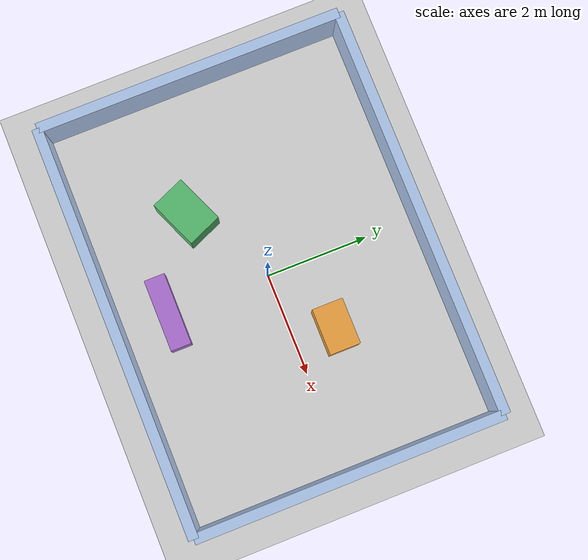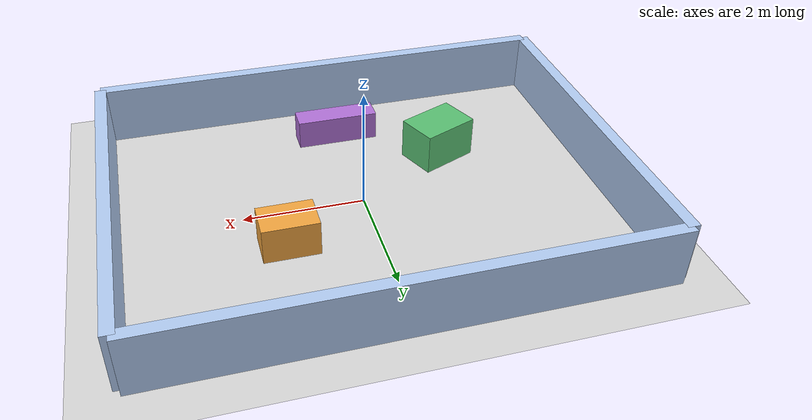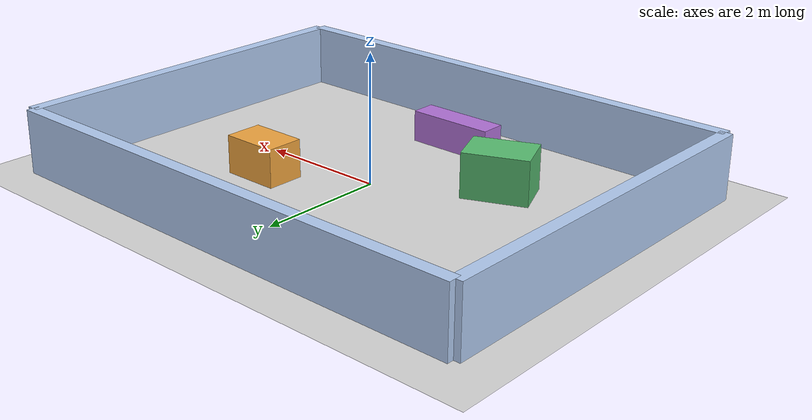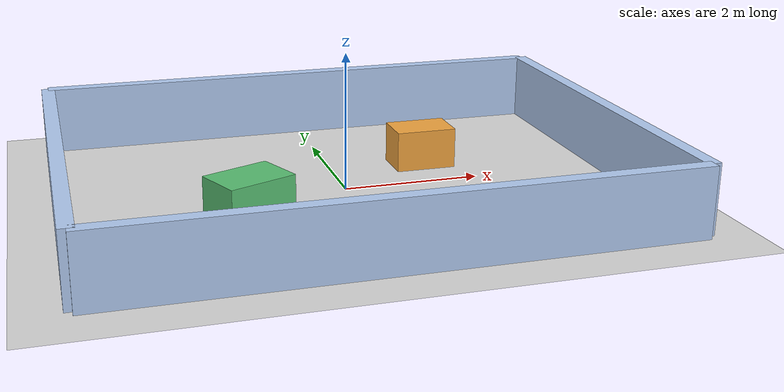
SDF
<?xml version="1.0" ?>
<sdf version="1.9">
  <world name="learning_room">
    <gravity>0 0 -9.8</gravity>

    <plugin
      filename="gz-sim-physics-system"
      name="gz::sim::systems::Physics">
    </plugin>
    <plugin
      filename="gz-sim-user-commands-system"
      name="gz::sim::systems::UserCommands">
    </plugin>
    <plugin
      filename="gz-sim-scene-broadcaster-system"
      name="gz::sim::systems::SceneBroadcaster">
    </plugin>
    <plugin
      filename="gz-sim-sensors-system"
      name="gz::sim::systems::Sensors">
      <render_engine>ogre2</render_engine>
    </plugin>

    <light type="directional" name="sun">
      <cast_shadows>true</cast_shadows>
      <pose>0 0 10 0 0 0</pose>
      <diffuse>0.8 0.8 0.8 1</diffuse>
      <specular>0.2 0.2 0.2 1</specular>
      <direction>-0.5 0.1 -1.0</direction>
    </light>

    <model name="ground_plane">
      <static>true</static>
      <link name="link">
        <collision name="collision">
          <geometry>
            <plane>
              <normal>0 0 1</normal>
              <size>20 20</size>
            </plane>
          </geometry>
        </collision>
        <visual name="visual">
          <geometry>
            <plane>
              <normal>0 0 1</normal>
              <size>20 20</size>
            </plane>
          </geometry>
          <material>
            <ambient>0.8 0.8 0.8 1</ambient>
            <diffuse>0.85 0.85 0.85 1</diffuse>
          </material>
        </visual>
      </link>
    </model>

    <model name="wall_north">
      <static>true</static>
      <pose>0 3 0.5 0 0 0</pose>
      <link name="link">
        <collision name="collision">
          <geometry>
            <box>
              <size>8 0.2 1.0</size>
            </box>
          </geometry>
        </collision>
        <visual name="visual">
          <geometry>
            <box>
              <size>8 0.2 1.0</size>
            </box>
          </geometry>
          <material>
            <ambient>0.7 0.8 0.95 1</ambient>
            <diffuse>0.7 0.8 0.95 1</diffuse>
          </material>
        </visual>
      </link>
    </model>

    <model name="wall_south">
      <static>true</static>
      <pose>0 -3 0.5 0 0 0</pose>
      <link name="link">
        <collision name="collision">
          <geometry>
            <box>
              <size>8 0.2 1.0</size>
            </box>
          </geometry>
        </collision>
        <visual name="visual">
          <geometry>
            <box>
              <size>8 0.2 1.0</size>
            </box>
          </geometry>
          <material>
            <ambient>0.7 0.8 0.95 1</ambient>
            <diffuse>0.7 0.8 0.95 1</diffuse>
          </material>
        </visual>
      </link>
    </model>

    <model name="wall_east">
      <static>true</static>
      <pose>4 0 0.5 0 0 0</pose>
      <link name="link">
        <collision name="collision">
          <geometry>
            <box>
              <size>0.2 6 1.0</size>
            </box>
          </geometry>
        </collision>
        <visual name="visual">
          <geometry>
            <box>
              <size>0.2 6 1.0</size>
            </box>
          </geometry>
          <material>
            <ambient>0.7 0.8 0.95 1</ambient>
            <diffuse>0.7 0.8 0.95 1</diffuse>
          </material>
        </visual>
      </link>
    </model>

    <model name="wall_west">
      <static>true</static>
      <pose>-4 0 0.5 0 0 0</pose>
      <link name="link">
        <collision name="collision">
          <geometry>
            <box>
              <size>0.2 6 1.0</size>
            </box>
          </geometry>
        </collision>
        <visual name="visual">
          <geometry>
            <box>
              <size>0.2 6 1.0</size>
            </box>
          </geometry>
          <material>
            <ambient>0.7 0.8 0.95 1</ambient>
            <diffuse>0.7 0.8 0.95 1</diffuse>
          </material>
        </visual>
      </link>
    </model>

    <model name="box_obstacle_1">
      <static>true</static>
      <pose>1.4 0.8 0.3 0 0 0</pose>
      <link name="link">
        <collision name="collision">
          <geometry>
            <box>
              <size>0.9 0.6 0.6</size>
            </box>
          </geometry>
        </collision>
        <visual name="visual">
          <geometry>
            <box>
              <size>0.9 0.6 0.6</size>
            </box>
          </geometry>
          <material>
            <ambient>0.95 0.65 0.25 1</ambient>
            <diffuse>0.95 0.65 0.25 1</diffuse>
          </material>
        </visual>
      </link>
    </model>

    <model name="box_obstacle_2">
      <static>true</static>
      <pose>-1.6 -1.0 0.35 0 0 0.4</pose>
      <link name="link">
        <collision name="collision">
          <geometry>
            <box>
              <size>1.0 0.7 0.7</size>
            </box>
          </geometry>
        </collision>
        <visual name="visual">
          <geometry>
            <box>
              <size>1.0 0.7 0.7</size>
            </box>
          </geometry>
          <material>
            <ambient>0.35 0.75 0.45 1</ambient>
            <diffuse>0.35 0.75 0.45 1</diffuse>
          </material>
        </visual>
      </link>
    </model>

    <model name="box_obstacle_3">
      <static>true</static>
      <pose>0.0 -2.0 0.25 0 0 0</pose>
      <link name="link">
        <collision name="collision">
          <geometry>
            <box>
              <size>1.4 0.4 0.5</size>
            </box>
          </geometry>
        </collision>
        <visual name="visual">
          <geometry>
            <box>
              <size>1.4 0.4 0.5</size>
            </box>
          </geometry>
          <material>
            <ambient>0.7 0.45 0.85 1</ambient>
            <diffuse>0.7 0.45 0.85 1</diffuse>
          </material>
        </visual>
      </link>
    </model>
  </world>
</sdf>
